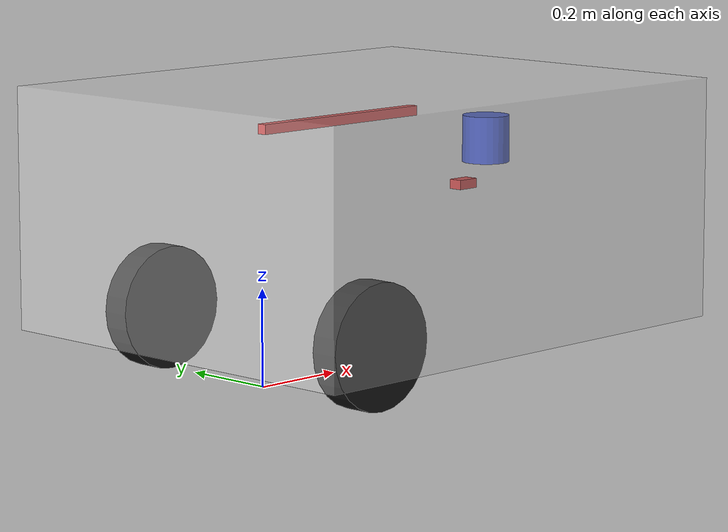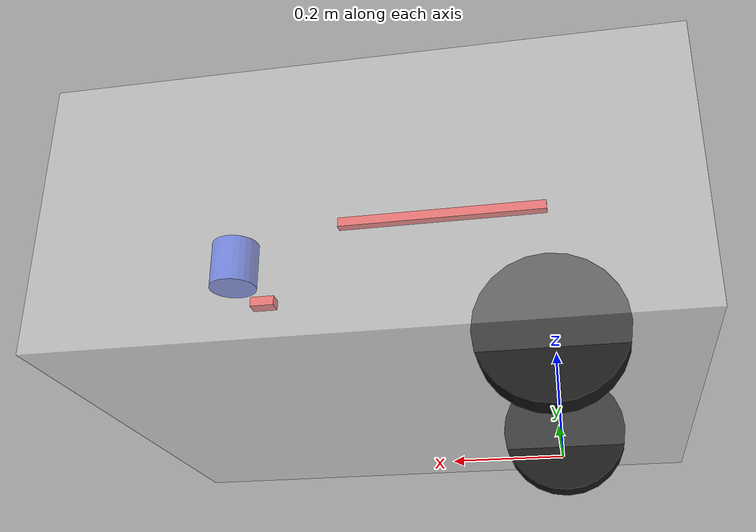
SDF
<?xml version="1.0"?>
<sdf version="1.7">
  <model name="whillcar">
    <self_collide>false</self_collide>

    <link name="base_link">
      <gravity>false</gravity>
      <pose>0.295 0 0.25 0 0 0</pose>
      <inertial>
        <pose>0 0 0 0 0 0</pose>
        <mass>40.0</mass>
        <inertia>
          <ixx>3.5333333333</ixx>
          <ixy>0.0</ixy>
          <ixz>0.0</ixz>
          <iyy>4.7936666667</iyy>
          <iyz>0.0</iyz>
          <izz>6.6603333333</izz>
        </inertia>
      </inertial>
      <collision name="base_collision">
        <geometry>
          <box>
            <size>1.09 0.90 0.5</size>
          </box>
        </geometry>
      </collision>
      <visual name="base_visual">
        <pose>0 0 0.09 0 0 0</pose>
        <geometry>
          <box>
            <size>1.09 0.90 0.5</size>
          </box>
        </geometry>
        <material>
          <ambient>0.9 0.9 0.9 0.35</ambient>
          <diffuse>0.9 0.9 0.9 0.35</diffuse>
        </material>
      </visual>
    </link>

    <link name="left_wheel_link">
      <gravity>false</gravity>
      <pose>0 0.30 0.127 1.57079632679 0 0</pose>
      <inertial>
        <mass>2.0</mass>
        <inertia>
          <ixx>0.016129</ixx>
          <ixy>0.0</ixy>
          <ixz>0.0</ixz>
          <iyy>0.0086645</iyy>
          <iyz>0.0</iyz>
          <izz>0.0086645</izz>
        </inertia>
      </inertial>
      <collision name="left_wheel_collision">
        <geometry>
          <cylinder>
            <radius>0.127</radius>
            <length>0.06</length>
          </cylinder>
        </geometry>
      </collision>
      <visual name="left_wheel_visual">
        <geometry>
          <cylinder>
            <radius>0.127</radius>
            <length>0.06</length>
          </cylinder>
        </geometry>
        <material>
          <ambient>0.1 0.1 0.1 1.0</ambient>
          <diffuse>0.1 0.1 0.1 1.0</diffuse>
        </material>
      </visual>
    </link>

    <link name="right_wheel_link">
      <gravity>false</gravity>
      <pose>0 -0.30 0.127 1.57079632679 0 0</pose>
      <inertial>
        <mass>2.0</mass>
        <inertia>
          <ixx>0.016129</ixx>
          <ixy>0.0</ixy>
          <ixz>0.0</ixz>
          <iyy>0.0086645</iyy>
          <iyz>0.0</iyz>
          <izz>0.0086645</izz>
        </inertia>
      </inertial>
      <collision name="right_wheel_collision">
        <geometry>
          <cylinder>
            <radius>0.127</radius>
            <length>0.06</length>
          </cylinder>
        </geometry>
      </collision>
      <visual name="right_wheel_visual">
        <geometry>
          <cylinder>
            <radius>0.127</radius>
            <length>0.06</length>
          </cylinder>
        </geometry>
        <material>
          <ambient>0.1 0.1 0.1 1.0</ambient>
          <diffuse>0.1 0.1 0.1 1.0</diffuse>
        </material>
      </visual>
    </link>

    <joint name="left_wheel_joint" type="fixed">
      <parent>base_link</parent>
      <child>left_wheel_link</child>
    </joint>

    <joint name="right_wheel_joint" type="fixed">
      <parent>base_link</parent>
      <child>right_wheel_link</child>
    </joint>

    <link name="imu_link">
      <gravity>false</gravity>
      <pose>0.59 0 0.35 0 0 3.1415926</pose>
      <visual name="imu_visual">
        <geometry>
          <box>
            <size>0.05 0.03 0.02</size>
          </box>
        </geometry>
        <material>
          <ambient>0.85 0.2 0.2 1.0</ambient>
          <diffuse>0.85 0.2 0.2 1.0</diffuse>
        </material>
      </visual>
      <sensor name="imu_sensor" type="imu">
        <always_on>true</always_on>
        <update_rate>100.0</update_rate>
        <topic>imu</topic>
        <enable_metrics>true</enable_metrics>
      </sensor>
    </link>

    <joint name="imu_joint" type="fixed">
      <parent>base_link</parent>
      <child>imu_link</child>
    </joint>

    <link name="laser_frame">
      <gravity>false</gravity>
      <pose>0.66 0 0.44 0 0 -1.5707963</pose>
      <inertial>
        <mass>0.6</mass>
        <inertia>
          <ixx>0.000875</ixx>
          <ixy>0.0</ixy>
          <ixz>0.0</ixz>
          <iyy>0.000875</iyy>
          <iyz>0.0</iyz>
          <izz>0.00075</izz>
        </inertia>
      </inertial>
      <collision name="laser_collision">
        <geometry>
          <cylinder>
            <radius>0.05</radius>
            <length>0.10</length>
          </cylinder>
        </geometry>
      </collision>
      <visual name="laser_visual">
        <geometry>
          <cylinder>
            <radius>0.05</radius>
            <length>0.10</length>
          </cylinder>
        </geometry>
        <material>
          <ambient>0.2 0.3 0.8 1.0</ambient>
          <diffuse>0.2 0.3 0.8 1.0</diffuse>
        </material>
      </visual>
      <sensor name="laser_sensor" type="gpu_lidar">
        <always_on>true</always_on>
        <visualize>true</visualize>
        <update_rate>10.0</update_rate>
        <topic>scan</topic>
        <enable_metrics>true</enable_metrics>
        <lidar>
          <scan>
            <horizontal>
              <samples>2700</samples>
              <resolution>1</resolution>
              <min_angle>-0.7853982</min_angle>
              <max_angle>3.9269908</max_angle>
            </horizontal>
          </scan>
          <range>
            <min>0.05</min>
            <max>25.0</max>
            <resolution>0.01</resolution>
          </range>
        </lidar>
      </sensor>
    </link>

    <joint name="laser_joint" type="fixed">
      <parent>base_link</parent>
      <child>laser_frame</child>
    </joint>

    <link name="front_indicator_link">
      <gravity>false</gravity>
      <pose>0 0 0.52 0 0 0</pose>
      <visual name="front_indicator_visual">
        <pose>0.218 0 0 0 0 0</pose>
        <geometry>
          <box>
            <size>0.436 0.02 0.02</size>
          </box>
        </geometry>
        <material>
          <ambient>0.85 0.2 0.2 1.0</ambient>
          <diffuse>0.85 0.2 0.2 1.0</diffuse>
        </material>
      </visual>
    </link>

    <joint name="front_indicator_joint" type="fixed">
      <parent>base_link</parent>
      <child>front_indicator_link</child>
    </joint>

    <plugin
      filename="ignition-gazebo-pose-publisher-system"
      name="gz::sim::systems::PosePublisher">
      <publish_link_pose>true</publish_link_pose>
      <use_pose_vector_msg>true</use_pose_vector_msg>
      <static_publisher>true</static_publisher>
      <static_update_frequency>1.0</static_update_frequency>
    </plugin>
  </model>
</sdf>
